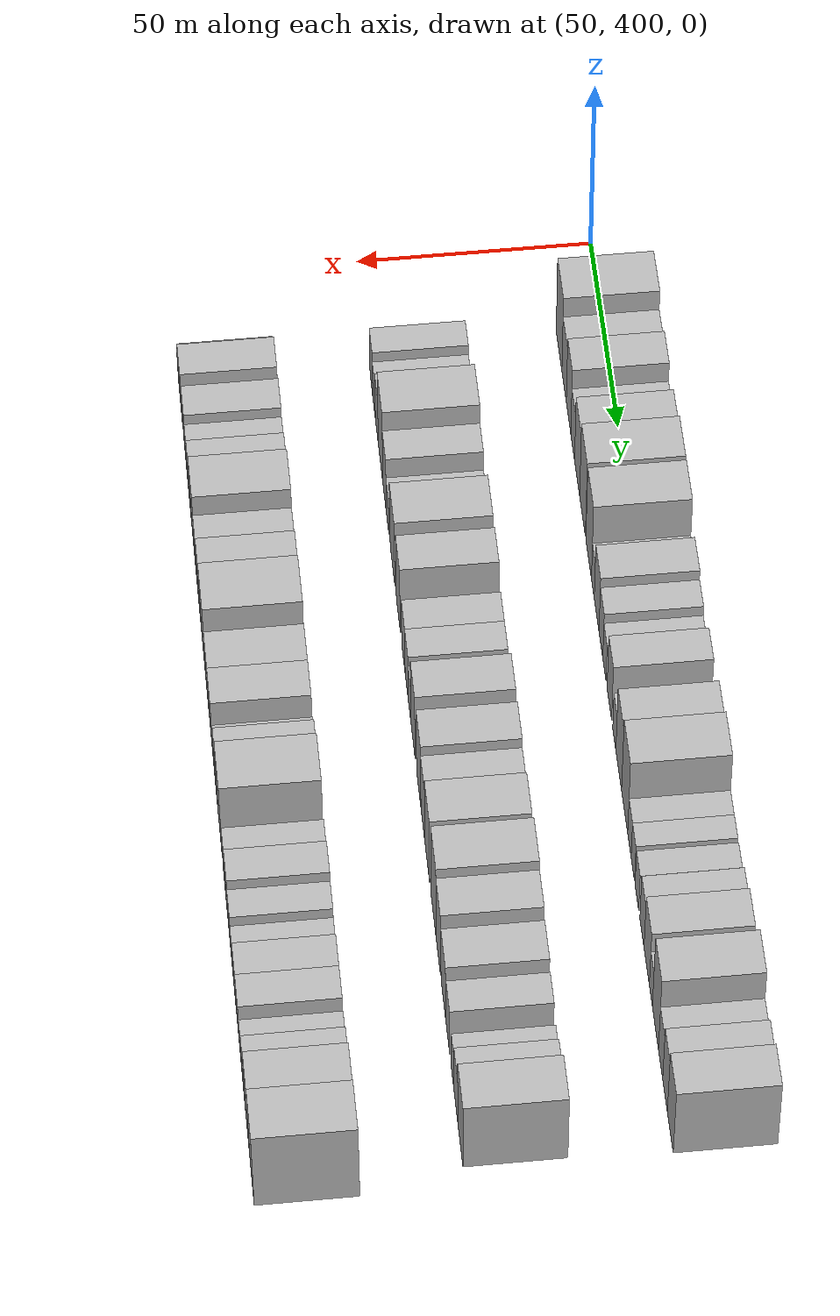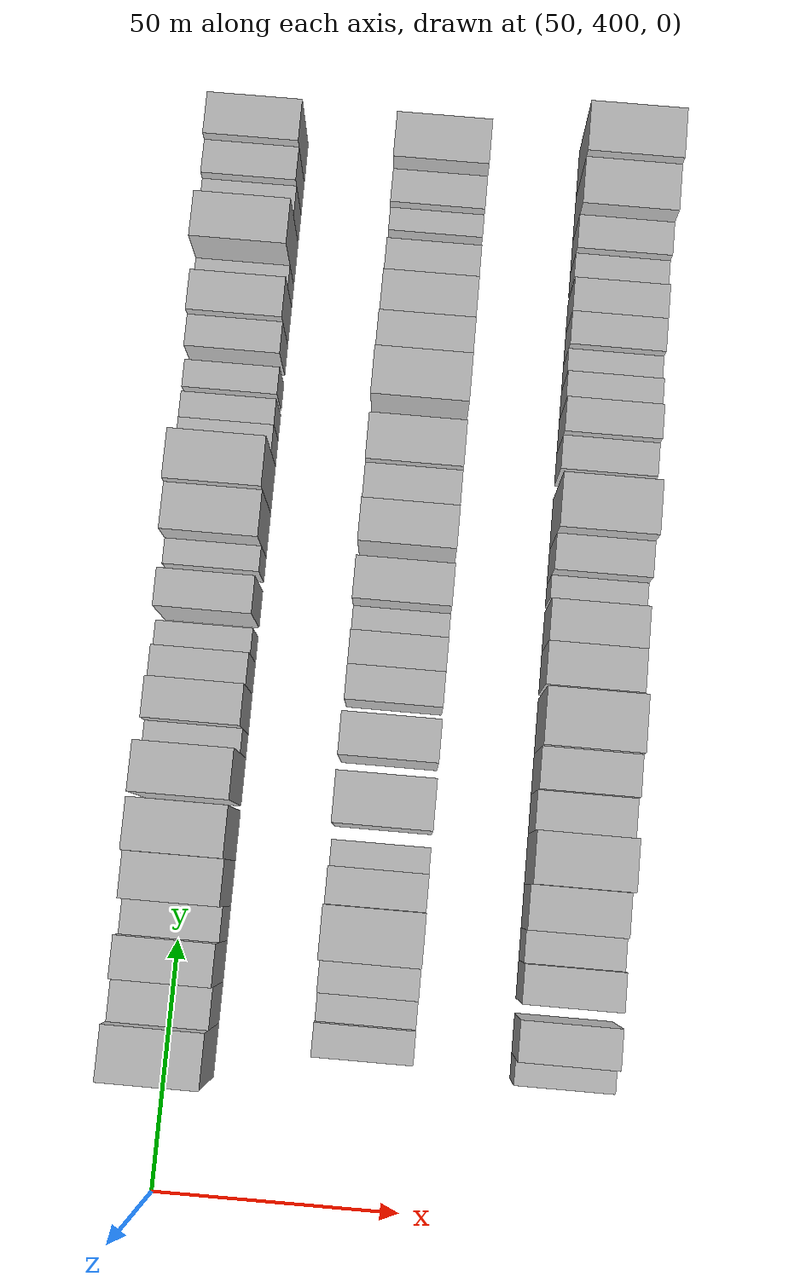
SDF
<sdf version="1.6">
 <world name="default">
  <model name="building_113">
   <static>1</static>
   <pose>50.0000 428.7032 0 0.000000 0.000000 0.000000</pose>
   <link name="link">
    <pose>0 0 12.00 0 0 0</pose>
    <collision name="collision"><geometry><box><size>20.0000 10.7855 24.0000</size></box></geometry></collision>
    <visual name="visual">
     <cast_shadows>0</cast_shadows>
     <geometry><box><size>20.0000 10.7855 24.0000</size></box></geometry>
     <material>
      <script>
       <uri>model://HANNAS_wall/materials/scripts</uri>
       <uri>model://HANNAS_wall/materials/textures</uri>
       <name>vrc/HANNAS_wall</name>
      </script>
     </material>
    </visual>
   </link>
  </model>
  <model name="building_114">
   <static>1</static>
   <pose>50.0000 438.2298 0 0.000000 0.000000 0.000000</pose>
   <link name="link">
    <pose>0 0 9.00 0 0 0</pose>
    <collision name="collision"><geometry><box><size>20.0000 8.2677 18.0000</size></box></geometry></collision>
    <visual name="visual">
     <cast_shadows>0</cast_shadows>
     <geometry><box><size>20.0000 8.2677 18.0000</size></box></geometry>
     <material>
      <script>
       <uri>model://HANNAS_wall/materials/scripts</uri>
       <uri>model://HANNAS_wall/materials/textures</uri>
       <name>vrc/HANNAS_wall</name>
      </script>
     </material>
    </visual>
   </link>
  </model>
  <model name="building_115">
   <static>1</static>
   <pose>50.0000 446.5739 0 0.000000 0.000000 0.000000</pose>
   <link name="link">
    <pose>0 0 10.50 0 0 0</pose>
    <collision name="collision"><geometry><box><size>20.0000 8.4205 21.0000</size></box></geometry></collision>
    <visual name="visual">
     <cast_shadows>0</cast_shadows>
     <geometry><box><size>20.0000 8.4205 21.0000</size></box></geometry>
     <material>
      <script>
       <uri>model://HANNAS_wall/materials/scripts</uri>
       <uri>model://HANNAS_wall/materials/textures</uri>
       <name>vrc/HANNAS_wall</name>
      </script>
     </material>
    </visual>
   </link>
  </model>
  <model name="building_116">
   <static>1</static>
   <pose>50.0000 454.2981 0 0.000000 0.000000 0.000000</pose>
   <link name="link">
    <pose>0 0 7.50 0 0 0</pose>
    <collision name="collision"><geometry><box><size>20.0000 7.0280 15.0000</size></box></geometry></collision>
    <visual name="visual">
     <cast_shadows>0</cast_shadows>
     <geometry><box><size>20.0000 7.0280 15.0000</size></box></geometry>
     <material>
      <script>
       <uri>model://HANNAS_wall/materials/scripts</uri>
       <uri>model://HANNAS_wall/materials/textures</uri>
       <name>vrc/HANNAS_wall</name>
      </script>
     </material>
    </visual>
   </link>
  </model>
  <model name="building_117">
   <static>1</static>
   <pose>50.0000 462.4518 0 0.000000 0.000000 0.000000</pose>
   <link name="link">
    <pose>0 0 10.50 0 0 0</pose>
    <collision name="collision"><geometry><box><size>20.0000 9.2793 21.0000</size></box></geometry></collision>
    <visual name="visual">
     <cast_shadows>0</cast_shadows>
     <geometry><box><size>20.0000 9.2793 21.0000</size></box></geometry>
     <material>
      <script>
       <uri>model://HANNAS_wall/materials/scripts</uri>
       <uri>model://HANNAS_wall/materials/textures</uri>
       <name>vrc/HANNAS_wall</name>
      </script>
     </material>
    </visual>
   </link>
  </model>
  <model name="building_118">
   <static>1</static>
   <pose>50.0000 472.2545 0 0.000000 0.000000 0.000000</pose>
   <link name="link">
    <pose>0 0 12.00 0 0 0</pose>
    <collision name="collision"><geometry><box><size>20.0000 10.3262 24.0000</size></box></geometry></collision>
    <visual name="visual">
     <cast_shadows>0</cast_shadows>
     <geometry><box><size>20.0000 10.3262 24.0000</size></box></geometry>
     <material>
      <script>
       <uri>model://HANNAS_wall/materials/scripts</uri>
       <uri>model://HANNAS_wall/materials/textures</uri>
       <name>vrc/HANNAS_wall</name>
      </script>
     </material>
    </visual>
   </link>
  </model>
  <model name="building_119">
   <static>1</static>
   <pose>50.0000 483.4670 0 0.000000 0.000000 0.000000</pose>
   <link name="link">
    <pose>0 0 12.00 0 0 0</pose>
    <collision name="collision"><geometry><box><size>20.0000 10.0989 24.0000</size></box></geometry></collision>
    <visual name="visual">
     <cast_shadows>0</cast_shadows>
     <geometry><box><size>20.0000 10.0989 24.0000</size></box></geometry>
     <material>
      <script>
       <uri>model://HANNAS_wall/materials/scripts</uri>
       <uri>model://HANNAS_wall/materials/textures</uri>
       <name>vrc/HANNAS_wall</name>
      </script>
     </material>
    </visual>
   </link>
  </model>
  <model name="building_120">
   <static>1</static>
   <pose>50.0000 491.0265 0 0.000000 0.000000 0.000000</pose>
   <link name="link">
    <pose>0 0 6.00 0 0 0</pose>
    <collision name="collision"><geometry><box><size>20.0000 5.0201 12.0000</size></box></geometry></collision>
    <visual name="visual">
     <cast_shadows>0</cast_shadows>
     <geometry><box><size>20.0000 5.0201 12.0000</size></box></geometry>
     <material>
      <script>
       <uri>model://HANNAS_wall/materials/scripts</uri>
       <uri>model://HANNAS_wall/materials/textures</uri>
       <name>vrc/HANNAS_wall</name>
      </script>
     </material>
    </visual>
   </link>
  </model>
  <model name="building_121">
   <static>1</static>
   <pose>50.0000 497.7476 0 0.000000 0.000000 0.000000</pose>
   <link name="link">
    <pose>0 0 9.00 0 0 0</pose>
    <collision name="collision"><geometry><box><size>20.0000 8.4220 18.0000</size></box></geometry></collision>
    <visual name="visual">
     <cast_shadows>0</cast_shadows>
     <geometry><box><size>20.0000 8.4220 18.0000</size></box></geometry>
     <material>
      <script>
       <uri>model://HANNAS_wall/materials/scripts</uri>
       <uri>model://HANNAS_wall/materials/textures</uri>
       <name>vrc/HANNAS_wall</name>
      </script>
     </material>
    </visual>
   </link>
  </model>
  <model name="building_122">
   <static>1</static>
   <pose>50.0000 505.3191 0 0.000000 0.000000 0.000000</pose>
   <link name="link">
    <pose>0 0 7.50 0 0 0</pose>
    <collision name="collision"><geometry><box><size>20.0000 6.7211 15.0000</size></box></geometry></collision>
    <visual name="visual">
     <cast_shadows>0</cast_shadows>
     <geometry><box><size>20.0000 6.7211 15.0000</size></box></geometry>
     <material>
      <script>
       <uri>model://HANNAS_wall/materials/scripts</uri>
       <uri>model://HANNAS_wall/materials/textures</uri>
       <name>vrc/HANNAS_wall</name>
      </script>
     </material>
    </visual>
   </link>
  </model>
  <model name="building_123">
   <static>1</static>
   <pose>50.0000 511.4197 0 0.000000 0.000000 0.000000</pose>
   <link name="link">
    <pose>0 0 6.00 0 0 0</pose>
    <collision name="collision"><geometry><box><size>20.0000 5.4801 12.0000</size></box></geometry></collision>
    <visual name="visual">
     <cast_shadows>0</cast_shadows>
     <geometry><box><size>20.0000 5.4801 12.0000</size></box></geometry>
     <material>
      <script>
       <uri>model://HANNAS_wall/materials/scripts</uri>
       <uri>model://HANNAS_wall/materials/textures</uri>
       <name>vrc/HANNAS_wall</name>
      </script>
     </material>
    </visual>
   </link>
  </model>
  <model name="building_124">
   <static>1</static>
   <pose>50.0000 520.0741 0 0.000000 0.000000 0.000000</pose>
   <link name="link">
    <pose>0 0 9.00 0 0 0</pose>
    <collision name="collision"><geometry><box><size>20.0000 7.8287 18.0000</size></box></geometry></collision>
    <visual name="visual">
     <cast_shadows>0</cast_shadows>
     <geometry><box><size>20.0000 7.8287 18.0000</size></box></geometry>
     <material>
      <script>
       <uri>model://HANNAS_wall/materials/scripts</uri>
       <uri>model://HANNAS_wall/materials/textures</uri>
       <name>vrc/HANNAS_wall</name>
      </script>
     </material>
    </visual>
   </link>
  </model>
  <model name="building_125">
   <static>1</static>
   <pose>50.0000 528.6816 0 0.000000 0.000000 0.000000</pose>
   <link name="link">
    <pose>0 0 6.00 0 0 0</pose>
    <collision name="collision"><geometry><box><size>20.0000 5.3862 12.0000</size></box></geometry></collision>
    <visual name="visual">
     <cast_shadows>0</cast_shadows>
     <geometry><box><size>20.0000 5.3862 12.0000</size></box></geometry>
     <material>
      <script>
       <uri>model://HANNAS_wall/materials/scripts</uri>
       <uri>model://HANNAS_wall/materials/textures</uri>
       <name>vrc/HANNAS_wall</name>
      </script>
     </material>
    </visual>
   </link>
  </model>
  <model name="building_126">
   <static>1</static>
   <pose>50.0000 536.2118 0 0.000000 0.000000 0.000000</pose>
   <link name="link">
    <pose>0 0 10.50 0 0 0</pose>
    <collision name="collision"><geometry><box><size>20.0000 9.6744 21.0000</size></box></geometry></collision>
    <visual name="visual">
     <cast_shadows>0</cast_shadows>
     <geometry><box><size>20.0000 9.6744 21.0000</size></box></geometry>
     <material>
      <script>
       <uri>model://HANNAS_wall/materials/scripts</uri>
       <uri>model://HANNAS_wall/materials/textures</uri>
       <name>vrc/HANNAS_wall</name>
      </script>
     </material>
    </visual>
   </link>
  </model>
  <model name="building_127">
   <static>1</static>
   <pose>50.0000 546.2428 0 0.000000 0.000000 0.000000</pose>
   <link name="link">
    <pose>0 0 12.00 0 0 0</pose>
    <collision name="collision"><geometry><box><size>20.0000 10.3876 24.0000</size></box></geometry></collision>
    <visual name="visual">
     <cast_shadows>0</cast_shadows>
     <geometry><box><size>20.0000 10.3876 24.0000</size></box></geometry>
     <material>
      <script>
       <uri>model://HANNAS_wall/materials/scripts</uri>
       <uri>model://HANNAS_wall/materials/textures</uri>
       <name>vrc/HANNAS_wall</name>
      </script>
     </material>
    </visual>
   </link>
  </model>
  <model name="building_128">
   <static>1</static>
   <pose>50.0000 554.3315 0 0.000000 0.000000 0.000000</pose>
   <link name="link">
    <pose>0 0 6.00 0 0 0</pose>
    <collision name="collision"><geometry><box><size>20.0000 5.7897 12.0000</size></box></geometry></collision>
    <visual name="visual">
     <cast_shadows>0</cast_shadows>
     <geometry><box><size>20.0000 5.7897 12.0000</size></box></geometry>
     <material>
      <script>
       <uri>model://HANNAS_wall/materials/scripts</uri>
       <uri>model://HANNAS_wall/materials/textures</uri>
       <name>vrc/HANNAS_wall</name>
      </script>
     </material>
    </visual>
   </link>
  </model>
  <model name="building_129">
   <static>1</static>
   <pose>50.0000 560.0180 0 0.000000 0.000000 0.000000</pose>
   <link name="link">
    <pose>0 0 6.00 0 0 0</pose>
    <collision name="collision"><geometry><box><size>20.0000 5.5833 12.0000</size></box></geometry></collision>
    <visual name="visual">
     <cast_shadows>0</cast_shadows>
     <geometry><box><size>20.0000 5.5833 12.0000</size></box></geometry>
     <material>
      <script>
       <uri>model://HANNAS_wall/materials/scripts</uri>
       <uri>model://HANNAS_wall/materials/textures</uri>
       <name>vrc/HANNAS_wall</name>
      </script>
     </material>
    </visual>
   </link>
  </model>
  <model name="building_130">
   <static>1</static>
   <pose>50.0000 566.7749 0 0.000000 0.000000 0.000000</pose>
   <link name="link">
    <pose>0 0 6.00 0 0 0</pose>
    <collision name="collision"><geometry><box><size>20.0000 5.9305 12.0000</size></box></geometry></collision>
    <visual name="visual">
     <cast_shadows>0</cast_shadows>
     <geometry><box><size>20.0000 5.9305 12.0000</size></box></geometry>
     <material>
      <script>
       <uri>model://HANNAS_wall/materials/scripts</uri>
       <uri>model://HANNAS_wall/materials/textures</uri>
       <name>vrc/HANNAS_wall</name>
      </script>
     </material>
    </visual>
   </link>
  </model>
  <model name="building_131">
   <static>1</static>
   <pose>50.0000 575.1531 0 0.000000 0.000000 0.000000</pose>
   <link name="link">
    <pose>0 0 7.50 0 0 0</pose>
    <collision name="collision"><geometry><box><size>20.0000 6.8259 15.0000</size></box></geometry></collision>
    <visual name="visual">
     <cast_shadows>0</cast_shadows>
     <geometry><box><size>20.0000 6.8259 15.0000</size></box></geometry>
     <material>
      <script>
       <uri>model://HANNAS_wall/materials/scripts</uri>
       <uri>model://HANNAS_wall/materials/textures</uri>
       <name>vrc/HANNAS_wall</name>
      </script>
     </material>
    </visual>
   </link>
  </model>
  <model name="building_132">
   <static>1</static>
   <pose>50.0000 582.8881 0 0.000000 0.000000 0.000000</pose>
   <link name="link">
    <pose>0 0 9.00 0 0 0</pose>
    <collision name="collision"><geometry><box><size>20.0000 8.6442 18.0000</size></box></geometry></collision>
    <visual name="visual">
     <cast_shadows>0</cast_shadows>
     <geometry><box><size>20.0000 8.6442 18.0000</size></box></geometry>
     <material>
      <script>
       <uri>model://HANNAS_wall/materials/scripts</uri>
       <uri>model://HANNAS_wall/materials/textures</uri>
       <name>vrc/HANNAS_wall</name>
      </script>
     </material>
    </visual>
   </link>
  </model>
  <model name="building_133">
   <static>1</static>
   <pose>50.0000 589.6509 0 0.000000 0.000000 0.000000</pose>
   <link name="link">
    <pose>0 0 6.00 0 0 0</pose>
    <collision name="collision"><geometry><box><size>20.0000 4.8814 12.0000</size></box></geometry></collision>
    <visual name="visual">
     <cast_shadows>0</cast_shadows>
     <geometry><box><size>20.0000 4.8814 12.0000</size></box></geometry>
     <material>
      <script>
       <uri>model://HANNAS_wall/materials/scripts</uri>
       <uri>model://HANNAS_wall/materials/textures</uri>
       <name>vrc/HANNAS_wall</name>
      </script>
     </material>
    </visual>
   </link>
  </model>
  <model name="building_134">
   <static>1</static>
   <pose>50.0000 596.9598 0 0.000000 0.000000 0.000000</pose>
   <link name="link">
    <pose>0 0 12.00 0 0 0</pose>
    <collision name="collision"><geometry><box><size>20.0000 9.7363 24.0000</size></box></geometry></collision>
    <visual name="visual">
     <cast_shadows>0</cast_shadows>
     <geometry><box><size>20.0000 9.7363 24.0000</size></box></geometry>
     <material>
      <script>
       <uri>model://HANNAS_wall/materials/scripts</uri>
       <uri>model://HANNAS_wall/materials/textures</uri>
       <name>vrc/HANNAS_wall</name>
      </script>
     </material>
    </visual>
   </link>
  </model>
  <model name="building_135">
   <static>1</static>
   <pose>50.0000 605.1909 0 0.000000 0.000000 0.000000</pose>
   <link name="link">
    <pose>0 0 7.50 0 0 0</pose>
    <collision name="collision"><geometry><box><size>20.0000 6.7259 15.0000</size></box></geometry></collision>
    <visual name="visual">
     <cast_shadows>0</cast_shadows>
     <geometry><box><size>20.0000 6.7259 15.0000</size></box></geometry>
     <material>
      <script>
       <uri>model://HANNAS_wall/materials/scripts</uri>
       <uri>model://HANNAS_wall/materials/textures</uri>
       <name>vrc/HANNAS_wall</name>
      </script>
     </material>
    </visual>
   </link>
  </model>
  <model name="building_136">
   <static>1</static>
   <pose>50.0000 612.2185 0 0.000000 0.000000 0.000000</pose>
   <link name="link">
    <pose>0 0 9.00 0 0 0</pose>
    <collision name="collision"><geometry><box><size>20.0000 7.3294 18.0000</size></box></geometry></collision>
    <visual name="visual">
     <cast_shadows>0</cast_shadows>
     <geometry><box><size>20.0000 7.3294 18.0000</size></box></geometry>
     <material>
      <script>
       <uri>model://HANNAS_wall/materials/scripts</uri>
       <uri>model://HANNAS_wall/materials/textures</uri>
       <name>vrc/HANNAS_wall</name>
      </script>
     </material>
    </visual>
   </link>
  </model>
  <model name="building_137">
   <static>1</static>
   <pose>50.0000 620.4668 0 0.000000 0.000000 0.000000</pose>
   <link name="link">
    <pose>0 0 10.50 0 0 0</pose>
    <collision name="collision"><geometry><box><size>20.0000 9.1672 21.0000</size></box></geometry></collision>
    <visual name="visual">
     <cast_shadows>0</cast_shadows>
     <geometry><box><size>20.0000 9.1672 21.0000</size></box></geometry>
     <material>
      <script>
       <uri>model://HANNAS_wall/materials/scripts</uri>
       <uri>model://HANNAS_wall/materials/textures</uri>
       <name>vrc/HANNAS_wall</name>
      </script>
     </material>
    </visual>
   </link>
  </model>
  <model name="building_255">
   <static>1</static>
   <pose>90.0000 433.8903 0 0.000000 0.000000 0.000000</pose>
   <link name="link">
    <pose>0 0 7.50 0 0 0</pose>
    <collision name="collision"><geometry><box><size>20.0000 6.6222 15.0000</size></box></geometry></collision>
    <visual name="visual">
     <cast_shadows>0</cast_shadows>
     <geometry><box><size>20.0000 6.6222 15.0000</size></box></geometry>
     <material>
      <script>
       <uri>model://HANNAS_wall/materials/scripts</uri>
       <uri>model://HANNAS_wall/materials/textures</uri>
       <name>vrc/HANNAS_wall</name>
      </script>
     </material>
    </visual>
   </link>
  </model>
  <model name="building_256">
   <static>1</static>
   <pose>90.0000 440.0372 0 0.000000 0.000000 0.000000</pose>
   <link name="link">
    <pose>0 0 6.00 0 0 0</pose>
    <collision name="collision"><geometry><box><size>20.0000 5.6716 12.0000</size></box></geometry></collision>
    <visual name="visual">
     <cast_shadows>0</cast_shadows>
     <geometry><box><size>20.0000 5.6716 12.0000</size></box></geometry>
     <material>
      <script>
       <uri>model://HANNAS_wall/materials/scripts</uri>
       <uri>model://HANNAS_wall/materials/textures</uri>
       <name>vrc/HANNAS_wall</name>
      </script>
     </material>
    </visual>
   </link>
  </model>
  <model name="building_257">
   <static>1</static>
   <pose>90.0000 446.2186 0 0.000000 0.000000 0.000000</pose>
   <link name="link">
    <pose>0 0 7.50 0 0 0</pose>
    <collision name="collision"><geometry><box><size>20.0000 6.6912 15.0000</size></box></geometry></collision>
    <visual name="visual">
     <cast_shadows>0</cast_shadows>
     <geometry><box><size>20.0000 6.6912 15.0000</size></box></geometry>
     <material>
      <script>
       <uri>model://HANNAS_wall/materials/scripts</uri>
       <uri>model://HANNAS_wall/materials/textures</uri>
       <name>vrc/HANNAS_wall</name>
      </script>
     </material>
    </visual>
   </link>
  </model>
  <model name="building_258">
   <static>1</static>
   <pose>90.0000 454.8661 0 0.000000 0.000000 0.000000</pose>
   <link name="link">
    <pose>0 0 12.00 0 0 0</pose>
    <collision name="collision"><geometry><box><size>20.0000 10.6038 24.0000</size></box></geometry></collision>
    <visual name="visual">
     <cast_shadows>0</cast_shadows>
     <geometry><box><size>20.0000 10.6038 24.0000</size></box></geometry>
     <material>
      <script>
       <uri>model://HANNAS_wall/materials/scripts</uri>
       <uri>model://HANNAS_wall/materials/textures</uri>
       <name>vrc/HANNAS_wall</name>
      </script>
     </material>
    </visual>
   </link>
  </model>
  <model name="building_259">
   <static>1</static>
   <pose>90.0000 463.9031 0 0.000000 0.000000 0.000000</pose>
   <link name="link">
    <pose>0 0 9.00 0 0 0</pose>
    <collision name="collision"><geometry><box><size>20.0000 7.4704 18.0000</size></box></geometry></collision>
    <visual name="visual">
     <cast_shadows>0</cast_shadows>
     <geometry><box><size>20.0000 7.4704 18.0000</size></box></geometry>
     <material>
      <script>
       <uri>model://HANNAS_wall/materials/scripts</uri>
       <uri>model://HANNAS_wall/materials/textures</uri>
       <name>vrc/HANNAS_wall</name>
      </script>
     </material>
    </visual>
   </link>
  </model>
  <model name="building_260">
   <static>1</static>
   <pose>90.0000 470.2919 0 0.000000 0.000000 0.000000</pose>
   <link name="link">
    <pose>0 0 6.00 0 0 0</pose>
    <collision name="collision"><geometry><box><size>20.0000 5.3071 12.0000</size></box></geometry></collision>
    <visual name="visual">
     <cast_shadows>0</cast_shadows>
     <geometry><box><size>20.0000 5.3071 12.0000</size></box></geometry>
     <material>
      <script>
       <uri>model://HANNAS_wall/materials/scripts</uri>
       <uri>model://HANNAS_wall/materials/textures</uri>
       <name>vrc/HANNAS_wall</name>
      </script>
     </material>
    </visual>
   </link>
  </model>
  <model name="building_261">
   <static>1</static>
   <pose>90.0000 481.1184 0 0.000000 0.000000 0.000000</pose>
   <link name="link">
    <pose>0 0 10.50 0 0 0</pose>
    <collision name="collision"><geometry><box><size>20.0000 10.3459 21.0000</size></box></geometry></collision>
    <visual name="visual">
     <cast_shadows>0</cast_shadows>
     <geometry><box><size>20.0000 10.3459 21.0000</size></box></geometry>
     <material>
      <script>
       <uri>model://HANNAS_wall/materials/scripts</uri>
       <uri>model://HANNAS_wall/materials/textures</uri>
       <name>vrc/HANNAS_wall</name>
      </script>
     </material>
    </visual>
   </link>
  </model>
  <model name="building_262">
   <static>1</static>
   <pose>90.0000 493.6417 0 0.000000 0.000000 0.000000</pose>
   <link name="link">
    <pose>0 0 10.50 0 0 0</pose>
    <collision name="collision"><geometry><box><size>20.0000 8.7006 21.0000</size></box></geometry></collision>
    <visual name="visual">
     <cast_shadows>0</cast_shadows>
     <geometry><box><size>20.0000 8.7006 21.0000</size></box></geometry>
     <material>
      <script>
       <uri>model://HANNAS_wall/materials/scripts</uri>
       <uri>model://HANNAS_wall/materials/textures</uri>
       <name>vrc/HANNAS_wall</name>
      </script>
     </material>
    </visual>
   </link>
  </model>
  <model name="building_263">
   <static>1</static>
   <pose>90.0000 504.6196 0 0.000000 0.000000 0.000000</pose>
   <link name="link">
    <pose>0 0 7.50 0 0 0</pose>
    <collision name="collision"><geometry><box><size>20.0000 7.2551 15.0000</size></box></geometry></collision>
    <visual name="visual">
     <cast_shadows>0</cast_shadows>
     <geometry><box><size>20.0000 7.2551 15.0000</size></box></geometry>
     <material>
      <script>
       <uri>model://HANNAS_wall/materials/scripts</uri>
       <uri>model://HANNAS_wall/materials/textures</uri>
       <name>vrc/HANNAS_wall</name>
      </script>
     </material>
    </visual>
   </link>
  </model>
  <model name="building_264">
   <static>1</static>
   <pose>90.0000 511.7575 0 0.000000 0.000000 0.000000</pose>
   <link name="link">
    <pose>0 0 7.50 0 0 0</pose>
    <collision name="collision"><geometry><box><size>20.0000 7.0208 15.0000</size></box></geometry></collision>
    <visual name="visual">
     <cast_shadows>0</cast_shadows>
     <geometry><box><size>20.0000 7.0208 15.0000</size></box></geometry>
     <material>
      <script>
       <uri>model://HANNAS_wall/materials/scripts</uri>
       <uri>model://HANNAS_wall/materials/textures</uri>
       <name>vrc/HANNAS_wall</name>
      </script>
     </material>
    </visual>
   </link>
  </model>
  <model name="building_265">
   <static>1</static>
   <pose>90.0000 517.9584 0 0.000000 0.000000 0.000000</pose>
   <link name="link">
    <pose>0 0 6.00 0 0 0</pose>
    <collision name="collision"><geometry><box><size>20.0000 5.3810 12.0000</size></box></geometry></collision>
    <visual name="visual">
     <cast_shadows>0</cast_shadows>
     <geometry><box><size>20.0000 5.3810 12.0000</size></box></geometry>
     <material>
      <script>
       <uri>model://HANNAS_wall/materials/scripts</uri>
       <uri>model://HANNAS_wall/materials/textures</uri>
       <name>vrc/HANNAS_wall</name>
      </script>
     </material>
    </visual>
   </link>
  </model>
  <model name="building_266">
   <static>1</static>
   <pose>90.0000 525.0227 0 0.000000 0.000000 0.000000</pose>
   <link name="link">
    <pose>0 0 10.50 0 0 0</pose>
    <collision name="collision"><geometry><box><size>20.0000 8.7476 21.0000</size></box></geometry></collision>
    <visual name="visual">
     <cast_shadows>0</cast_shadows>
     <geometry><box><size>20.0000 8.7476 21.0000</size></box></geometry>
     <material>
      <script>
       <uri>model://HANNAS_wall/materials/scripts</uri>
       <uri>model://HANNAS_wall/materials/textures</uri>
       <name>vrc/HANNAS_wall</name>
      </script>
     </material>
    </visual>
   </link>
  </model>
  <model name="building_267">
   <static>1</static>
   <pose>90.0000 536.8650 0 0.000000 0.000000 0.000000</pose>
   <link name="link">
    <pose>0 0 10.50 0 0 0</pose>
    <collision name="collision"><geometry><box><size>20.0000 8.9371 21.0000</size></box></geometry></collision>
    <visual name="visual">
     <cast_shadows>0</cast_shadows>
     <geometry><box><size>20.0000 8.9371 21.0000</size></box></geometry>
     <material>
      <script>
       <uri>model://HANNAS_wall/materials/scripts</uri>
       <uri>model://HANNAS_wall/materials/textures</uri>
       <name>vrc/HANNAS_wall</name>
      </script>
     </material>
    </visual>
   </link>
  </model>
  <model name="building_268">
   <static>1</static>
   <pose>90.0000 545.3512 0 0.000000 0.000000 0.000000</pose>
   <link name="link">
    <pose>0 0 9.00 0 0 0</pose>
    <collision name="collision"><geometry><box><size>20.0000 8.0353 18.0000</size></box></geometry></collision>
    <visual name="visual">
     <cast_shadows>0</cast_shadows>
     <geometry><box><size>20.0000 8.0353 18.0000</size></box></geometry>
     <material>
      <script>
       <uri>model://HANNAS_wall/materials/scripts</uri>
       <uri>model://HANNAS_wall/materials/textures</uri>
       <name>vrc/HANNAS_wall</name>
      </script>
     </material>
    </visual>
   </link>
  </model>
  <model name="building_269">
   <static>1</static>
   <pose>90.0000 554.2325 0 0.000000 0.000000 0.000000</pose>
   <link name="link">
    <pose>0 0 10.50 0 0 0</pose>
    <collision name="collision"><geometry><box><size>20.0000 9.7273 21.0000</size></box></geometry></collision>
    <visual name="visual">
     <cast_shadows>0</cast_shadows>
     <geometry><box><size>20.0000 9.7273 21.0000</size></box></geometry>
     <material>
      <script>
       <uri>model://HANNAS_wall/materials/scripts</uri>
       <uri>model://HANNAS_wall/materials/textures</uri>
       <name>vrc/HANNAS_wall</name>
      </script>
     </material>
    </visual>
   </link>
  </model>
  <model name="building_270">
   <static>1</static>
   <pose>90.0000 567.1702 0 0.000000 0.000000 0.000000</pose>
   <link name="link">
    <pose>0 0 12.00 0 0 0</pose>
    <collision name="collision"><geometry><box><size>20.0000 10.1482 24.0000</size></box></geometry></collision>
    <visual name="visual">
     <cast_shadows>0</cast_shadows>
     <geometry><box><size>20.0000 10.1482 24.0000</size></box></geometry>
     <material>
      <script>
       <uri>model://HANNAS_wall/materials/scripts</uri>
       <uri>model://HANNAS_wall/materials/textures</uri>
       <name>vrc/HANNAS_wall</name>
      </script>
     </material>
    </visual>
   </link>
  </model>
  <model name="building_271">
   <static>1</static>
   <pose>90.0000 576.5674 0 0.000000 0.000000 0.000000</pose>
   <link name="link">
    <pose>0 0 10.50 0 0 0</pose>
    <collision name="collision"><geometry><box><size>20.0000 8.6461 21.0000</size></box></geometry></collision>
    <visual name="visual">
     <cast_shadows>0</cast_shadows>
     <geometry><box><size>20.0000 8.6461 21.0000</size></box></geometry>
     <material>
      <script>
       <uri>model://HANNAS_wall/materials/scripts</uri>
       <uri>model://HANNAS_wall/materials/textures</uri>
       <name>vrc/HANNAS_wall</name>
      </script>
     </material>
    </visual>
   </link>
  </model>
  <model name="building_272">
   <static>1</static>
   <pose>90.0000 586.3567 0 0.000000 0.000000 0.000000</pose>
   <link name="link">
    <pose>0 0 9.00 0 0 0</pose>
    <collision name="collision"><geometry><box><size>20.0000 8.9326 18.0000</size></box></geometry></collision>
    <visual name="visual">
     <cast_shadows>0</cast_shadows>
     <geometry><box><size>20.0000 8.9326 18.0000</size></box></geometry>
     <material>
      <script>
       <uri>model://HANNAS_wall/materials/scripts</uri>
       <uri>model://HANNAS_wall/materials/textures</uri>
       <name>vrc/HANNAS_wall</name>
      </script>
     </material>
    </visual>
   </link>
  </model>
  <model name="building_273">
   <static>1</static>
   <pose>90.0000 595.3378 0 0.000000 0.000000 0.000000</pose>
   <link name="link">
    <pose>0 0 7.50 0 0 0</pose>
    <collision name="collision"><geometry><box><size>20.0000 7.0296 15.0000</size></box></geometry></collision>
    <visual name="visual">
     <cast_shadows>0</cast_shadows>
     <geometry><box><size>20.0000 7.0296 15.0000</size></box></geometry>
     <material>
      <script>
       <uri>model://HANNAS_wall/materials/scripts</uri>
       <uri>model://HANNAS_wall/materials/textures</uri>
       <name>vrc/HANNAS_wall</name>
      </script>
     </material>
    </visual>
   </link>
  </model>
  <model name="building_274">
   <static>1</static>
   <pose>90.0000 604.3773 0 0.000000 0.000000 0.000000</pose>
   <link name="link">
    <pose>0 0 6.00 0 0 0</pose>
    <collision name="collision"><geometry><box><size>20.0000 5.0495 12.0000</size></box></geometry></collision>
    <visual name="visual">
     <cast_shadows>0</cast_shadows>
     <geometry><box><size>20.0000 5.0495 12.0000</size></box></geometry>
     <material>
      <script>
       <uri>model://HANNAS_wall/materials/scripts</uri>
       <uri>model://HANNAS_wall/materials/textures</uri>
       <name>vrc/HANNAS_wall</name>
      </script>
     </material>
    </visual>
   </link>
  </model>
  <model name="building_275">
   <static>1</static>
   <pose>90.0000 610.5671 0 0.000000 0.000000 0.000000</pose>
   <link name="link">
    <pose>0 0 7.50 0 0 0</pose>
    <collision name="collision"><geometry><box><size>20.0000 7.3301 15.0000</size></box></geometry></collision>
    <visual name="visual">
     <cast_shadows>0</cast_shadows>
     <geometry><box><size>20.0000 7.3301 15.0000</size></box></geometry>
     <material>
      <script>
       <uri>model://HANNAS_wall/materials/scripts</uri>
       <uri>model://HANNAS_wall/materials/textures</uri>
       <name>vrc/HANNAS_wall</name>
      </script>
     </material>
    </visual>
   </link>
  </model>
  <model name="building_276">
   <static>1</static>
   <pose>90.0000 619.1758 0 0.000000 0.000000 0.000000</pose>
   <link name="link">
    <pose>0 0 10.50 0 0 0</pose>
    <collision name="collision"><geometry><box><size>20.0000 9.8871 21.0000</size></box></geometry></collision>
    <visual name="visual">
     <cast_shadows>0</cast_shadows>
     <geometry><box><size>20.0000 9.8871 21.0000</size></box></geometry>
     <material>
      <script>
       <uri>model://HANNAS_wall/materials/scripts</uri>
       <uri>model://HANNAS_wall/materials/textures</uri>
       <name>vrc/HANNAS_wall</name>
      </script>
     </material>
    </visual>
   </link>
  </model>
  <model name="building_392">
   <static>1</static>
   <pose>130.0000 430.8294 0 0.000000 0.000000 0.000000</pose>
   <link name="link">
    <pose>0 0 6.00 0 0 0</pose>
    <collision name="collision"><geometry><box><size>20.0000 5.0703 12.0000</size></box></geometry></collision>
    <visual name="visual">
     <cast_shadows>0</cast_shadows>
     <geometry><box><size>20.0000 5.0703 12.0000</size></box></geometry>
     <material>
      <script>
       <uri>model://HANNAS_wall/materials/scripts</uri>
       <uri>model://HANNAS_wall/materials/textures</uri>
       <name>vrc/HANNAS_wall</name>
      </script>
     </material>
    </visual>
   </link>
  </model>
  <model name="building_393">
   <static>1</static>
   <pose>130.0000 437.3640 0 0.000000 0.000000 0.000000</pose>
   <link name="link">
    <pose>0 0 9.00 0 0 0</pose>
    <collision name="collision"><geometry><box><size>20.0000 7.9990 18.0000</size></box></geometry></collision>
    <visual name="visual">
     <cast_shadows>0</cast_shadows>
     <geometry><box><size>20.0000 7.9990 18.0000</size></box></geometry>
     <material>
      <script>
       <uri>model://HANNAS_wall/materials/scripts</uri>
       <uri>model://HANNAS_wall/materials/textures</uri>
       <name>vrc/HANNAS_wall</name>
      </script>
     </material>
    </visual>
   </link>
  </model>
  <model name="building_394">
   <static>1</static>
   <pose>130.0000 448.2306 0 0.000000 0.000000 0.000000</pose>
   <link name="link">
    <pose>0 0 9.00 0 0 0</pose>
    <collision name="collision"><geometry><box><size>20.0000 7.7340 18.0000</size></box></geometry></collision>
    <visual name="visual">
     <cast_shadows>0</cast_shadows>
     <geometry><box><size>20.0000 7.7340 18.0000</size></box></geometry>
     <material>
      <script>
       <uri>model://HANNAS_wall/materials/scripts</uri>
       <uri>model://HANNAS_wall/materials/textures</uri>
       <name>vrc/HANNAS_wall</name>
      </script>
     </material>
    </visual>
   </link>
  </model>
  <model name="building_395">
   <static>1</static>
   <pose>130.0000 455.3454 0 0.000000 0.000000 0.000000</pose>
   <link name="link">
    <pose>0 0 7.50 0 0 0</pose>
    <collision name="collision"><geometry><box><size>20.0000 6.4956 15.0000</size></box></geometry></collision>
    <visual name="visual">
     <cast_shadows>0</cast_shadows>
     <geometry><box><size>20.0000 6.4956 15.0000</size></box></geometry>
     <material>
      <script>
       <uri>model://HANNAS_wall/materials/scripts</uri>
       <uri>model://HANNAS_wall/materials/textures</uri>
       <name>vrc/HANNAS_wall</name>
      </script>
     </material>
    </visual>
   </link>
  </model>
  <model name="building_396">
   <static>1</static>
   <pose>130.0000 463.0464 0 0.000000 0.000000 0.000000</pose>
   <link name="link">
    <pose>0 0 9.00 0 0 0</pose>
    <collision name="collision"><geometry><box><size>20.0000 8.9065 18.0000</size></box></geometry></collision>
    <visual name="visual">
     <cast_shadows>0</cast_shadows>
     <geometry><box><size>20.0000 8.9065 18.0000</size></box></geometry>
     <material>
      <script>
       <uri>model://HANNAS_wall/materials/scripts</uri>
       <uri>model://HANNAS_wall/materials/textures</uri>
       <name>vrc/HANNAS_wall</name>
      </script>
     </material>
    </visual>
   </link>
  </model>
  <model name="building_397">
   <static>1</static>
   <pose>130.0000 472.6972 0 0.000000 0.000000 0.000000</pose>
   <link name="link">
    <pose>0 0 12.00 0 0 0</pose>
    <collision name="collision"><geometry><box><size>20.0000 10.3951 24.0000</size></box></geometry></collision>
    <visual name="visual">
     <cast_shadows>0</cast_shadows>
     <geometry><box><size>20.0000 10.3951 24.0000</size></box></geometry>
     <material>
      <script>
       <uri>model://HANNAS_wall/materials/scripts</uri>
       <uri>model://HANNAS_wall/materials/textures</uri>
       <name>vrc/HANNAS_wall</name>
      </script>
     </material>
    </visual>
   </link>
  </model>
  <model name="building_398">
   <static>1</static>
   <pose>130.0000 481.9517 0 0.000000 0.000000 0.000000</pose>
   <link name="link">
    <pose>0 0 9.00 0 0 0</pose>
    <collision name="collision"><geometry><box><size>20.0000 8.1140 18.0000</size></box></geometry></collision>
    <visual name="visual">
     <cast_shadows>0</cast_shadows>
     <geometry><box><size>20.0000 8.1140 18.0000</size></box></geometry>
     <material>
      <script>
       <uri>model://HANNAS_wall/materials/scripts</uri>
       <uri>model://HANNAS_wall/materials/textures</uri>
       <name>vrc/HANNAS_wall</name>
      </script>
     </material>
    </visual>
   </link>
  </model>
  <model name="building_399">
   <static>1</static>
   <pose>130.0000 490.2466 0 0.000000 0.000000 0.000000</pose>
   <link name="link">
    <pose>0 0 10.50 0 0 0</pose>
    <collision name="collision"><geometry><box><size>20.0000 8.4757 21.0000</size></box></geometry></collision>
    <visual name="visual">
     <cast_shadows>0</cast_shadows>
     <geometry><box><size>20.0000 8.4757 21.0000</size></box></geometry>
     <material>
      <script>
       <uri>model://HANNAS_wall/materials/scripts</uri>
       <uri>model://HANNAS_wall/materials/textures</uri>
       <name>vrc/HANNAS_wall</name>
      </script>
     </material>
    </visual>
   </link>
  </model>
  <model name="building_400">
   <static>1</static>
   <pose>130.0000 500.2911 0 0.000000 0.000000 0.000000</pose>
   <link name="link">
    <pose>0 0 12.00 0 0 0</pose>
    <collision name="collision"><geometry><box><size>20.0000 11.6133 24.0000</size></box></geometry></collision>
    <visual name="visual">
     <cast_shadows>0</cast_shadows>
     <geometry><box><size>20.0000 11.6133 24.0000</size></box></geometry>
     <material>
      <script>
       <uri>model://HANNAS_wall/materials/scripts</uri>
       <uri>model://HANNAS_wall/materials/textures</uri>
       <name>vrc/HANNAS_wall</name>
      </script>
     </material>
    </visual>
   </link>
  </model>
  <model name="building_401">
   <static>1</static>
   <pose>130.0000 511.5566 0 0.000000 0.000000 0.000000</pose>
   <link name="link">
    <pose>0 0 9.00 0 0 0</pose>
    <collision name="collision"><geometry><box><size>20.0000 8.9176 18.0000</size></box></geometry></collision>
    <visual name="visual">
     <cast_shadows>0</cast_shadows>
     <geometry><box><size>20.0000 8.9176 18.0000</size></box></geometry>
     <material>
      <script>
       <uri>model://HANNAS_wall/materials/scripts</uri>
       <uri>model://HANNAS_wall/materials/textures</uri>
       <name>vrc/HANNAS_wall</name>
      </script>
     </material>
    </visual>
   </link>
  </model>
  <model name="building_402">
   <static>1</static>
   <pose>130.0000 520.3367 0 0.000000 0.000000 0.000000</pose>
   <link name="link">
    <pose>0 0 9.00 0 0 0</pose>
    <collision name="collision"><geometry><box><size>20.0000 8.6427 18.0000</size></box></geometry></collision>
    <visual name="visual">
     <cast_shadows>0</cast_shadows>
     <geometry><box><size>20.0000 8.6427 18.0000</size></box></geometry>
     <material>
      <script>
       <uri>model://HANNAS_wall/materials/scripts</uri>
       <uri>model://HANNAS_wall/materials/textures</uri>
       <name>vrc/HANNAS_wall</name>
      </script>
     </material>
    </visual>
   </link>
  </model>
  <model name="building_403">
   <static>1</static>
   <pose>130.0000 528.0971 0 0.000000 0.000000 0.000000</pose>
   <link name="link">
    <pose>0 0 6.00 0 0 0</pose>
    <collision name="collision"><geometry><box><size>20.0000 4.8781 12.0000</size></box></geometry></collision>
    <visual name="visual">
     <cast_shadows>0</cast_shadows>
     <geometry><box><size>20.0000 4.8781 12.0000</size></box></geometry>
     <material>
      <script>
       <uri>model://HANNAS_wall/materials/scripts</uri>
       <uri>model://HANNAS_wall/materials/textures</uri>
       <name>vrc/HANNAS_wall</name>
      </script>
     </material>
    </visual>
   </link>
  </model>
  <model name="building_404">
   <static>1</static>
   <pose>130.0000 534.3004 0 0.000000 0.000000 0.000000</pose>
   <link name="link">
    <pose>0 0 9.00 0 0 0</pose>
    <collision name="collision"><geometry><box><size>20.0000 7.5284 18.0000</size></box></geometry></collision>
    <visual name="visual">
     <cast_shadows>0</cast_shadows>
     <geometry><box><size>20.0000 7.5284 18.0000</size></box></geometry>
     <material>
      <script>
       <uri>model://HANNAS_wall/materials/scripts</uri>
       <uri>model://HANNAS_wall/materials/textures</uri>
       <name>vrc/HANNAS_wall</name>
      </script>
     </material>
    </visual>
   </link>
  </model>
  <model name="building_405">
   <static>1</static>
   <pose>130.0000 543.6885 0 0.000000 0.000000 0.000000</pose>
   <link name="link">
    <pose>0 0 12.00 0 0 0</pose>
    <collision name="collision"><geometry><box><size>20.0000 11.2478 24.0000</size></box></geometry></collision>
    <visual name="visual">
     <cast_shadows>0</cast_shadows>
     <geometry><box><size>20.0000 11.2478 24.0000</size></box></geometry>
     <material>
      <script>
       <uri>model://HANNAS_wall/materials/scripts</uri>
       <uri>model://HANNAS_wall/materials/textures</uri>
       <name>vrc/HANNAS_wall</name>
      </script>
     </material>
    </visual>
   </link>
  </model>
  <model name="building_406">
   <static>1</static>
   <pose>130.0000 555.8746 0 0.000000 0.000000 0.000000</pose>
   <link name="link">
    <pose>0 0 7.50 0 0 0</pose>
    <collision name="collision"><geometry><box><size>20.0000 7.1245 15.0000</size></box></geometry></collision>
    <visual name="visual">
     <cast_shadows>0</cast_shadows>
     <geometry><box><size>20.0000 7.1245 15.0000</size></box></geometry>
     <material>
      <script>
       <uri>model://HANNAS_wall/materials/scripts</uri>
       <uri>model://HANNAS_wall/materials/textures</uri>
       <name>vrc/HANNAS_wall</name>
      </script>
     </material>
    </visual>
   </link>
  </model>
  <model name="building_407">
   <static>1</static>
   <pose>130.0000 563.1207 0 0.000000 0.000000 0.000000</pose>
   <link name="link">
    <pose>0 0 9.00 0 0 0</pose>
    <collision name="collision"><geometry><box><size>20.0000 7.3676 18.0000</size></box></geometry></collision>
    <visual name="visual">
     <cast_shadows>0</cast_shadows>
     <geometry><box><size>20.0000 7.3676 18.0000</size></box></geometry>
     <material>
      <script>
       <uri>model://HANNAS_wall/materials/scripts</uri>
       <uri>model://HANNAS_wall/materials/textures</uri>
       <name>vrc/HANNAS_wall</name>
      </script>
     </material>
    </visual>
   </link>
  </model>
  <model name="building_408">
   <static>1</static>
   <pose>130.0000 570.0293 0 0.000000 0.000000 0.000000</pose>
   <link name="link">
    <pose>0 0 7.50 0 0 0</pose>
    <collision name="collision"><geometry><box><size>20.0000 6.4496 15.0000</size></box></geometry></collision>
    <visual name="visual">
     <cast_shadows>0</cast_shadows>
     <geometry><box><size>20.0000 6.4496 15.0000</size></box></geometry>
     <material>
      <script>
       <uri>model://HANNAS_wall/materials/scripts</uri>
       <uri>model://HANNAS_wall/materials/textures</uri>
       <name>vrc/HANNAS_wall</name>
      </script>
     </material>
    </visual>
   </link>
  </model>
  <model name="building_409">
   <static>1</static>
   <pose>130.0000 576.1655 0 0.000000 0.000000 0.000000</pose>
   <link name="link">
    <pose>0 0 6.00 0 0 0</pose>
    <collision name="collision"><geometry><box><size>20.0000 5.8227 12.0000</size></box></geometry></collision>
    <visual name="visual">
     <cast_shadows>0</cast_shadows>
     <geometry><box><size>20.0000 5.8227 12.0000</size></box></geometry>
     <material>
      <script>
       <uri>model://HANNAS_wall/materials/scripts</uri>
       <uri>model://HANNAS_wall/materials/textures</uri>
       <name>vrc/HANNAS_wall</name>
      </script>
     </material>
    </visual>
   </link>
  </model>
  <model name="building_410">
   <static>1</static>
   <pose>130.0000 582.6842 0 0.000000 0.000000 0.000000</pose>
   <link name="link">
    <pose>0 0 7.50 0 0 0</pose>
    <collision name="collision"><geometry><box><size>20.0000 7.2149 15.0000</size></box></geometry></collision>
    <visual name="visual">
     <cast_shadows>0</cast_shadows>
     <geometry><box><size>20.0000 7.2149 15.0000</size></box></geometry>
     <material>
      <script>
       <uri>model://HANNAS_wall/materials/scripts</uri>
       <uri>model://HANNAS_wall/materials/textures</uri>
       <name>vrc/HANNAS_wall</name>
      </script>
     </material>
    </visual>
   </link>
  </model>
  <model name="building_411">
   <static>1</static>
   <pose>130.0000 589.9750 0 0.000000 0.000000 0.000000</pose>
   <link name="link">
    <pose>0 0 7.50 0 0 0</pose>
    <collision name="collision"><geometry><box><size>20.0000 7.3665 15.0000</size></box></geometry></collision>
    <visual name="visual">
     <cast_shadows>0</cast_shadows>
     <geometry><box><size>20.0000 7.3665 15.0000</size></box></geometry>
     <material>
      <script>
       <uri>model://HANNAS_wall/materials/scripts</uri>
       <uri>model://HANNAS_wall/materials/textures</uri>
       <name>vrc/HANNAS_wall</name>
      </script>
     </material>
    </visual>
   </link>
  </model>
  <model name="building_412">
   <static>1</static>
   <pose>130.0000 597.3942 0 0.000000 0.000000 0.000000</pose>
   <link name="link">
    <pose>0 0 6.00 0 0 0</pose>
    <collision name="collision"><geometry><box><size>20.0000 5.4720 12.0000</size></box></geometry></collision>
    <visual name="visual">
     <cast_shadows>0</cast_shadows>
     <geometry><box><size>20.0000 5.4720 12.0000</size></box></geometry>
     <material>
      <script>
       <uri>model://HANNAS_wall/materials/scripts</uri>
       <uri>model://HANNAS_wall/materials/textures</uri>
       <name>vrc/HANNAS_wall</name>
      </script>
     </material>
    </visual>
   </link>
  </model>
  <model name="building_413">
   <static>1</static>
   <pose>130.0000 603.7961 0 0.000000 0.000000 0.000000</pose>
   <link name="link">
    <pose>0 0 7.50 0 0 0</pose>
    <collision name="collision"><geometry><box><size>20.0000 7.3318 15.0000</size></box></geometry></collision>
    <visual name="visual">
     <cast_shadows>0</cast_shadows>
     <geometry><box><size>20.0000 7.3318 15.0000</size></box></geometry>
     <material>
      <script>
       <uri>model://HANNAS_wall/materials/scripts</uri>
       <uri>model://HANNAS_wall/materials/textures</uri>
       <name>vrc/HANNAS_wall</name>
      </script>
     </material>
    </visual>
   </link>
  </model>
  <model name="building_414">
   <static>1</static>
   <pose>130.0000 612.5370 0 0.000000 0.000000 0.000000</pose>
   <link name="link">
    <pose>0 0 10.50 0 0 0</pose>
    <collision name="collision"><geometry><box><size>20.0000 10.1499 21.0000</size></box></geometry></collision>
    <visual name="visual">
     <cast_shadows>0</cast_shadows>
     <geometry><box><size>20.0000 10.1499 21.0000</size></box></geometry>
     <material>
      <script>
       <uri>model://HANNAS_wall/materials/scripts</uri>
       <uri>model://HANNAS_wall/materials/textures</uri>
       <name>vrc/HANNAS_wall</name>
      </script>
     </material>
    </visual>
   </link>
  </model>
  <model name="building_415">
   <static>1</static>
   <pose>130.0000 623.0692 0 0.000000 0.000000 0.000000</pose>
   <link name="link">
    <pose>0 0 12.00 0 0 0</pose>
    <collision name="collision"><geometry><box><size>20.0000 10.9145 24.0000</size></box></geometry></collision>
    <visual name="visual">
     <cast_shadows>0</cast_shadows>
     <geometry><box><size>20.0000 10.9145 24.0000</size></box></geometry>
     <material>
      <script>
       <uri>model://HANNAS_wall/materials/scripts</uri>
       <uri>model://HANNAS_wall/materials/textures</uri>
       <name>vrc/HANNAS_wall</name>
      </script>
     </material>
    </visual>
   </link>
  </model>
 </world>
</sdf>
